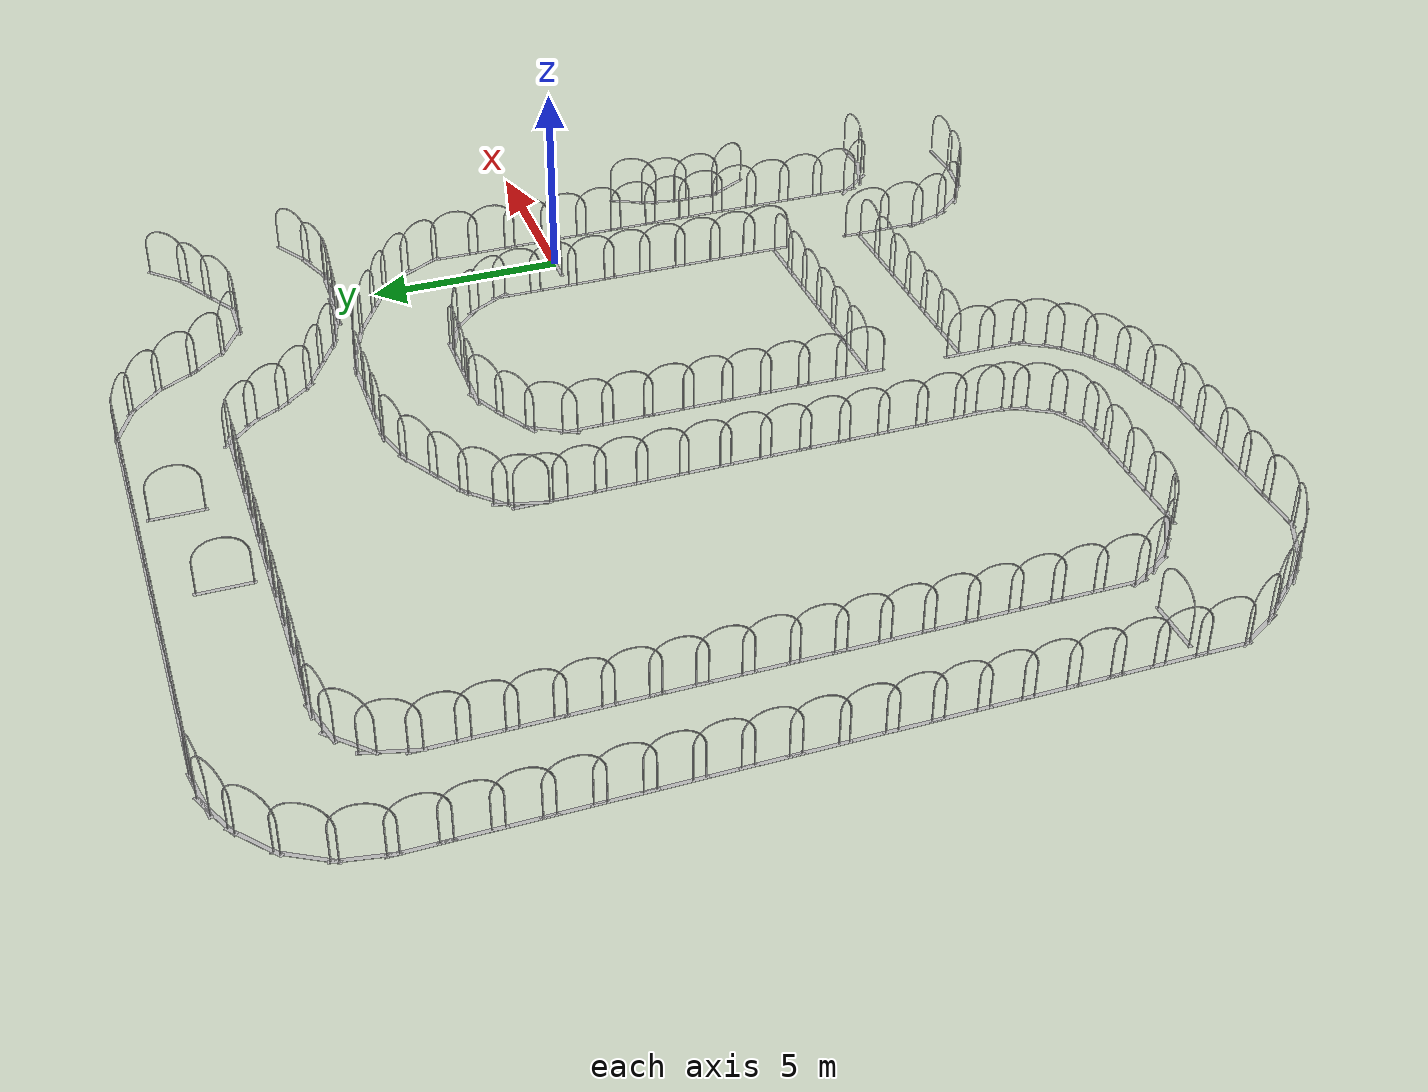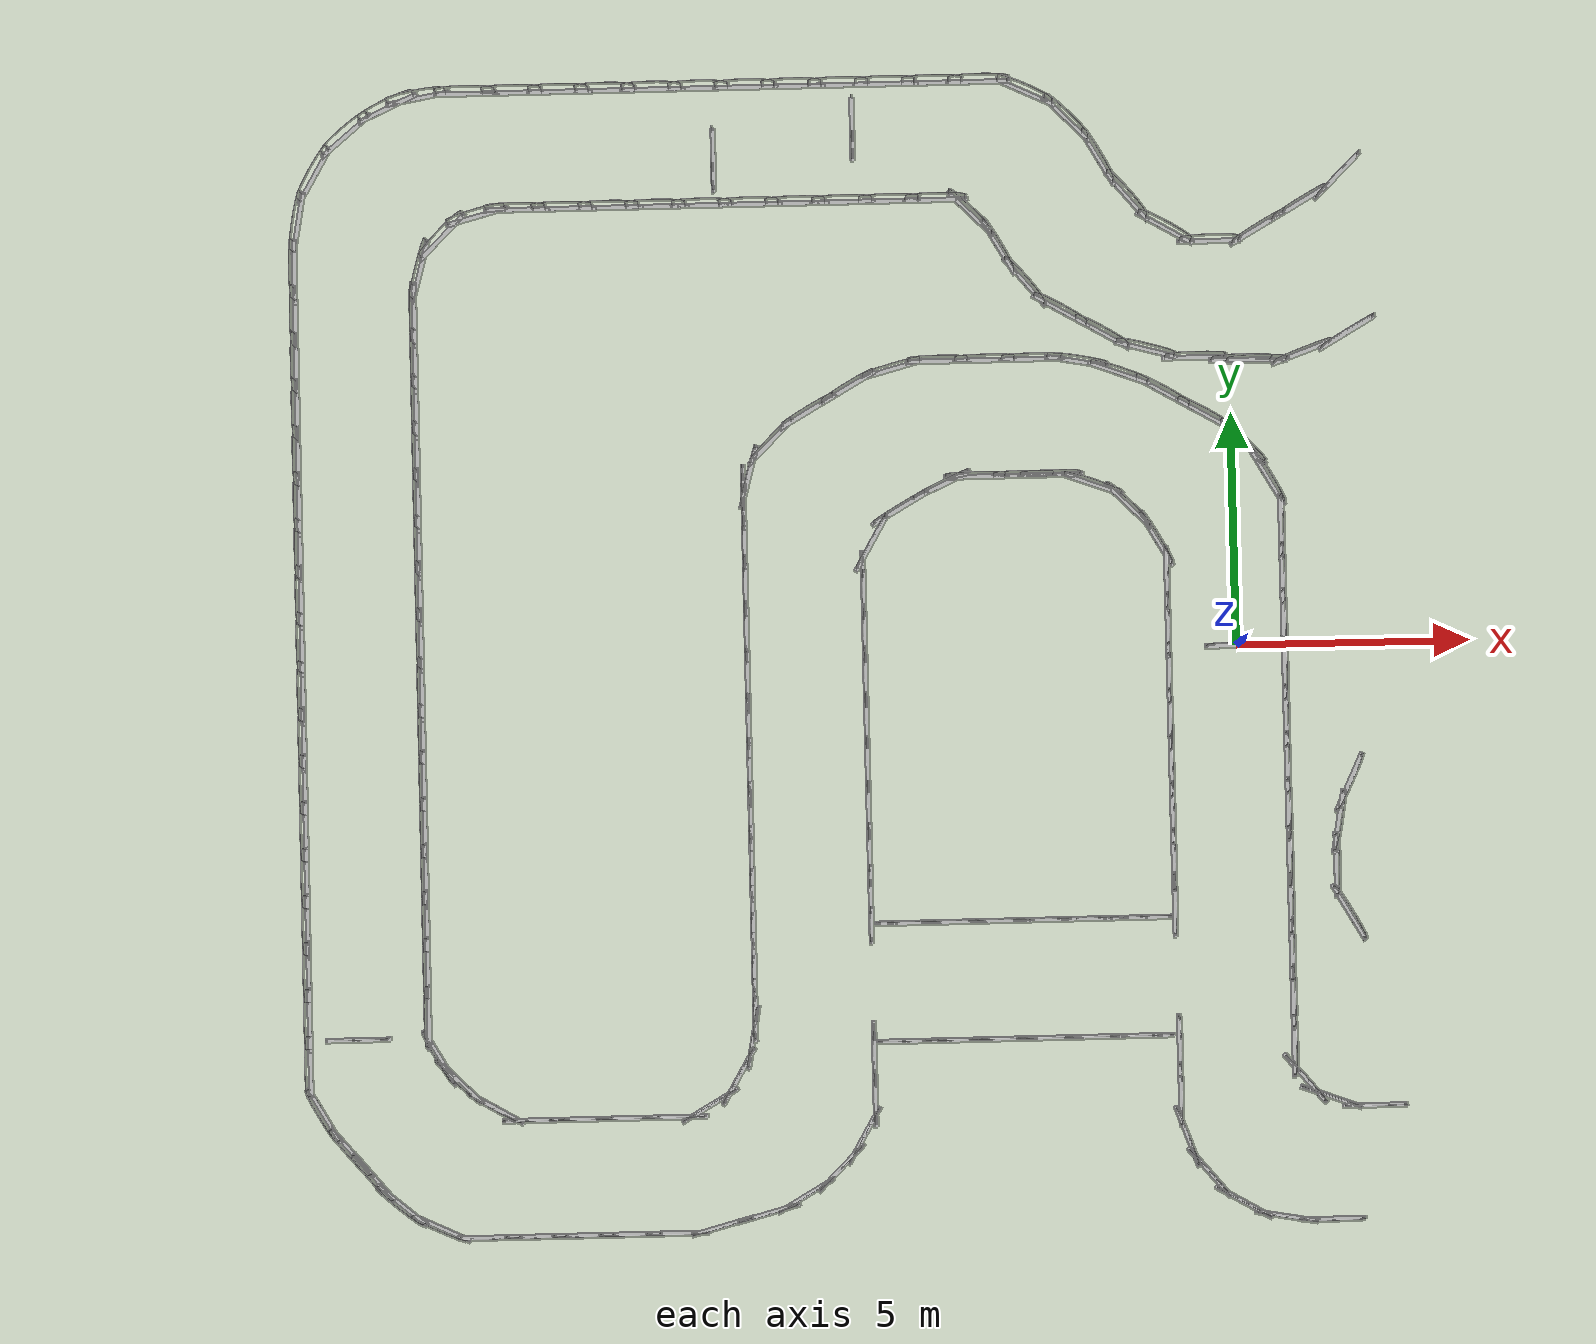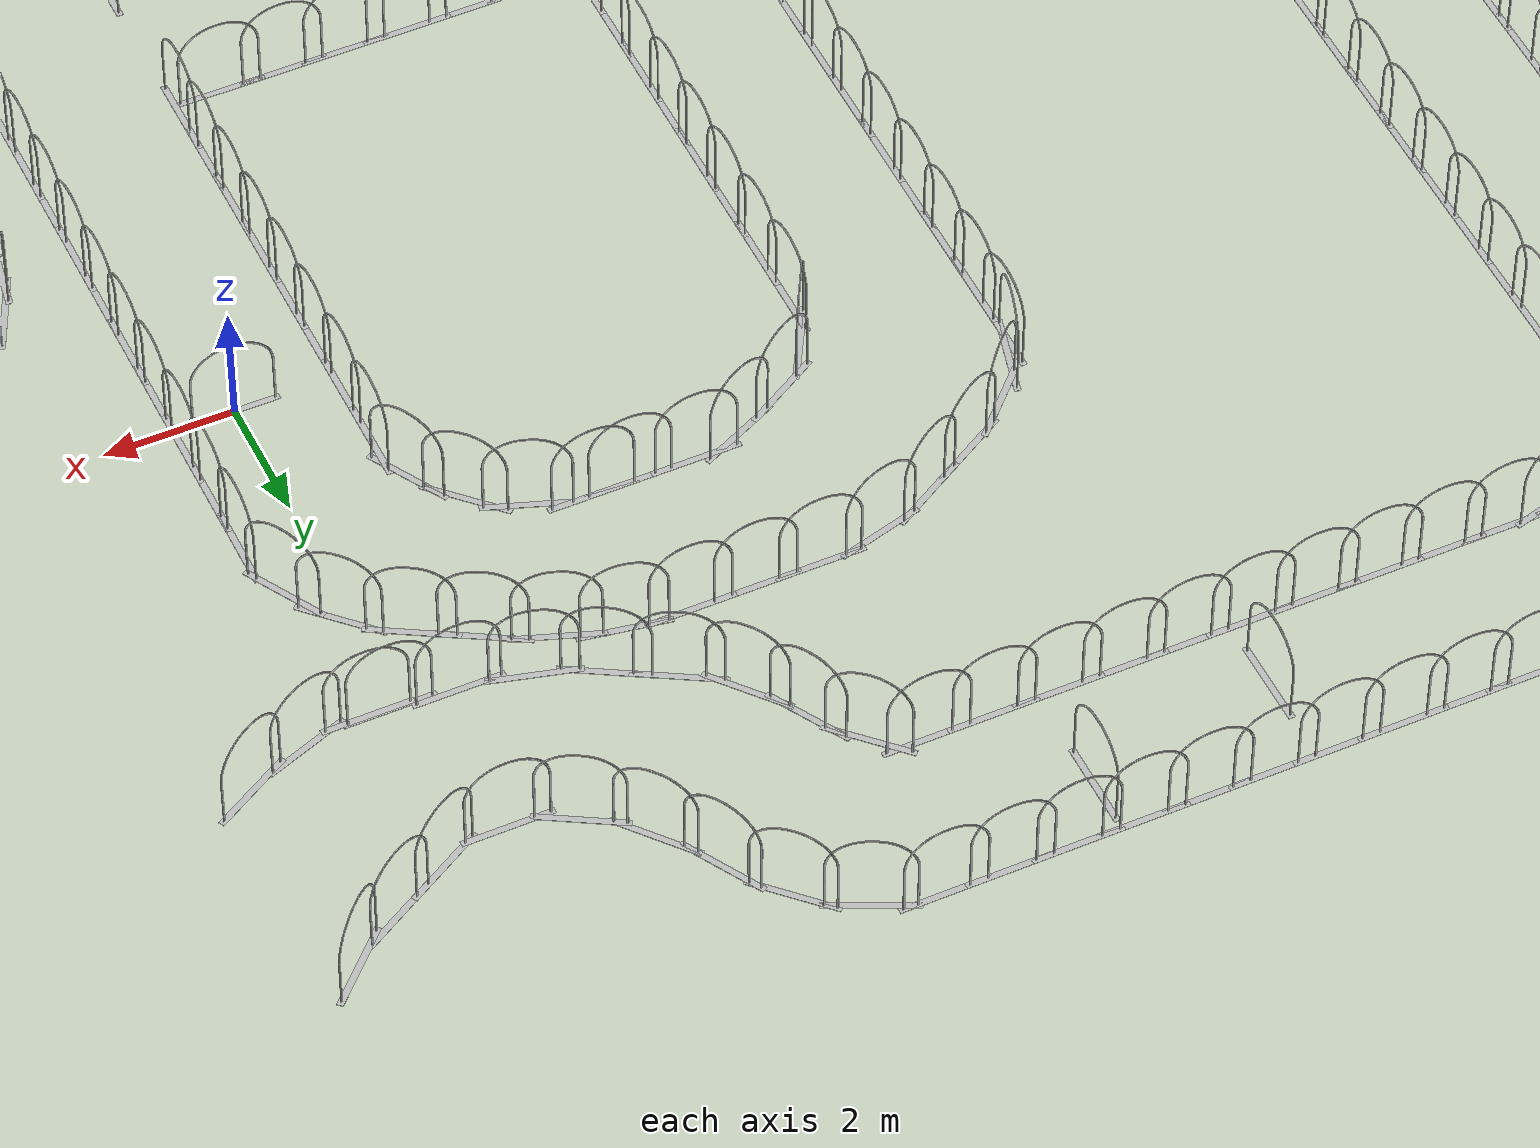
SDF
<sdf version="1.6">
 <world name="racetrack_world">
  <include><name>ground_plane</name><uri>../models/grass_plane/model.sdf</uri></include>
  <include>
   <name>model_0</name>
   <uri>../models/straw_bale/model.sdf</uri>
   <pose>1.5374999999999979 9.45 0.175 0 0 0.5235987755982988</pose>
  </include>
  <include>
   <name>model_1</name>
   <uri>../models/straw_bale/model.sdf</uri>
   <pose>2.3874999999999993 10.025 0.175 0 0 0.7853981633974483</pose>
  </include>
  <include>
   <name>model_20</name>
   <uri>../models/straw_bale/model.sdf</uri>
   <pose>0.6624999999999979 8.95 0.175 0 0 0.5235987755982988</pose>
  </include>
  <include>
   <name>model_103</name>
   <uri>../models/straw_bale/model.sdf</uri>
   <pose>0.5625 6.1 0.175 0 0 -0.0</pose>
  </include>
  <include>
   <name>model_104</name>
   <uri>../models/straw_bale/model.sdf</uri>
   <pose>1.5374999999999979 6.25 0.175 0 0 0.3490658503988659</pose>
  </include>
  <include>
   <name>model_105</name>
   <uri>../models/straw_bale/model.sdf</uri>
   <pose>2.5124999999999993 6.65 0.175 0 0 0.5235987755982988</pose>
  </include>
  <include>
   <name>model_169</name>
   <uri>../models/straw_bale/model.sdf</uri>
   <pose>-14.262500000000003 12.25 0.175 0 0 -0.0</pose>
  </include>
  <include>
   <name>model_170</name>
   <uri>../models/straw_bale/model.sdf</uri>
   <pose>-13.262500000000003 12.25 0.175 0 0 -0.0</pose>
  </include>
  <include>
   <name>model_171</name>
   <uri>../models/straw_bale/model.sdf</uri>
   <pose>-12.262500000000003 12.25 0.175 0 0 -0.0</pose>
  </include>
  <include>
   <name>model_172</name>
   <uri>../models/straw_bale/model.sdf</uri>
   <pose>-11.262500000000003 12.25 0.175 0 0 -0.0</pose>
  </include>
  <include>
   <name>model_173</name>
   <uri>../models/straw_bale/model.sdf</uri>
   <pose>-10.262500000000003 12.25 0.175 0 0 -0.0</pose>
  </include>
  <include>
   <name>model_174</name>
   <uri>../models/straw_bale/model.sdf</uri>
   <pose>-9.262500000000003 12.25 0.175 0 0 -0.0</pose>
  </include>
  <include>
   <name>model_175</name>
   <uri>../models/straw_bale/model.sdf</uri>
   <pose>-8.262500000000003 12.25 0.175 0 0 -0.0</pose>
  </include>
  <include>
   <name>model_176</name>
   <uri>../models/straw_bale/model.sdf</uri>
   <pose>-7.262500000000003 12.25 0.175 0 0 -0.0</pose>
  </include>
  <include>
   <name>model_177</name>
   <uri>../models/straw_bale/model.sdf</uri>
   <pose>-6.262500000000003 12.25 0.175 0 0 -0.0</pose>
  </include>
  <include>
   <name>model_178</name>
   <uri>../models/straw_bale/model.sdf</uri>
   <pose>-5.262500000000003 12.25 0.175 0 0 -0.0</pose>
  </include>
  <include>
   <name>model_179</name>
   <uri>../models/straw_bale/model.sdf</uri>
   <pose>-15.262500000000003 12.25 0.175 0 0 -0.0</pose>
  </include>
  <include>
   <name>model_180</name>
   <uri>../models/straw_bale/model.sdf</uri>
   <pose>-16.262500000000003 12.25 0.175 0 0 -0.0</pose>
  </include>
  <include>
   <name>model_181</name>
   <uri>../models/straw_bale/model.sdf</uri>
   <pose>-4.262500000000003 12.0 0.175 0 0 -0.4363323129985824</pose>
  </include>
  <include>
   <name>model_182</name>
   <uri>../models/straw_bale/model.sdf</uri>
   <pose>-3.387500000000003 11.4 0.175 0 0 -0.7853981633974483</pose>
  </include>
  <include>
   <name>model_183</name>
   <uri>../models/straw_bale/model.sdf</uri>
   <pose>-2.7375000000000007 10.55 0.175 0 0 -1.0471975511965976</pose>
  </include>
  <include>
   <name>model_184</name>
   <uri>../models/straw_bale/model.sdf</uri>
   <pose>-2.137500000000003 9.7 0.175 0 0 -0.8726646259971648</pose>
  </include>
  <include>
   <name>model_185</name>
   <uri>../models/straw_bale/model.sdf</uri>
   <pose>-1.3375000000000021 9.0 0.175 0 0 -0.5235987755982988</pose>
  </include>
  <include>
   <name>model_186</name>
   <uri>../models/straw_bale/model.sdf</uri>
   <pose>-0.38750000000000284 8.7 0.175 0 0 -0.0</pose>
  </include>
  <include>
   <name>model_187</name>
   <uri>../models/straw_bale/model.sdf</uri>
   <pose>-17.312500000000004 12.175 0.175 0 0 0.17453292519943295</pose>
  </include>
  <include>
   <name>model_188</name>
   <uri>../models/straw_bale/model.sdf</uri>
   <pose>-17.962500000000002 11.975000000000001 0.175 0 0 0.4363323129985824</pose>
  </include>
  <include>
   <name>model_189</name>
   <uri>../models/straw_bale/model.sdf</uri>
   <pose>-19.562500000000004 10.55 0.175 0 0 1.0471975511965976</pose>
  </include>
  <include>
   <name>model_190</name>
   <uri>../models/straw_bale/model.sdf</uri>
   <pose>-19.937500000000004 9.525 0.175 0 0 1.3962634015954636</pose>
  </include>
  <include>
   <name>model_191</name>
   <uri>../models/straw_bale/model.sdf</uri>
   <pose>-20.0375 8.5 0.175 0 0 1.5707963267948966</pose>
  </include>
  <include>
   <name>model_192</name>
   <uri>../models/straw_bale/model.sdf</uri>
   <pose>-18.862500000000004 11.4 0.175 0 0 0.6981317007977318</pose>
  </include>
  <include>
   <name>model_193</name>
   <uri>../models/straw_bale/model.sdf</uri>
   <pose>-20.0375 7.5 0.175 0 0 1.5707963267948966</pose>
  </include>
  <include>
   <name>model_194</name>
   <uri>../models/straw_bale/model.sdf</uri>
   <pose>-20.0375 6.5 0.175 0 0 1.5707963267948966</pose>
  </include>
  <include>
   <name>model_195</name>
   <uri>../models/straw_bale/model.sdf</uri>
   <pose>-20.0375 5.5 0.175 0 0 1.5707963267948966</pose>
  </include>
  <include>
   <name>model_196</name>
   <uri>../models/straw_bale/model.sdf</uri>
   <pose>-20.0375 4.5 0.175 0 0 1.5707963267948966</pose>
  </include>
  <include>
   <name>model_197</name>
   <uri>../models/straw_bale/model.sdf</uri>
   <pose>-20.0375 3.5 0.175 0 0 1.5707963267948966</pose>
  </include>
  <include>
   <name>model_198</name>
   <uri>../models/straw_bale/model.sdf</uri>
   <pose>-20.0375 2.5 0.175 0 0 1.5707963267948966</pose>
  </include>
  <include>
   <name>model_199</name>
   <uri>../models/straw_bale/model.sdf</uri>
   <pose>-20.0375 1.5 0.175 0 0 1.5707963267948966</pose>
  </include>
  <include>
   <name>model_200</name>
   <uri>../models/straw_bale/model.sdf</uri>
   <pose>-20.0375 0.5 0.175 0 0 1.5707963267948966</pose>
  </include>
  <include>
   <name>model_201</name>
   <uri>../models/straw_bale/model.sdf</uri>
   <pose>-20.0375 -0.5500000000000007 0.175 0 0 1.5707963267948966</pose>
  </include>
  <include>
   <name>model_202</name>
   <uri>../models/straw_bale/model.sdf</uri>
   <pose>-20.0375 -1.5500000000000007 0.175 0 0 1.5707963267948966</pose>
  </include>
  <include>
   <name>model_203</name>
   <uri>../models/straw_bale/model.sdf</uri>
   <pose>-20.0375 -2.5500000000000007 0.175 0 0 1.5707963267948966</pose>
  </include>
  <include>
   <name>model_204</name>
   <uri>../models/straw_bale/model.sdf</uri>
   <pose>-20.0375 -3.5500000000000007 0.175 0 0 1.5707963267948966</pose>
  </include>
  <include>
   <name>model_205</name>
   <uri>../models/straw_bale/model.sdf</uri>
   <pose>-20.0375 -4.550000000000001 0.175 0 0 1.5707963267948966</pose>
  </include>
  <include>
   <name>model_206</name>
   <uri>../models/straw_bale/model.sdf</uri>
   <pose>-20.0375 -5.550000000000001 0.175 0 0 1.5707963267948966</pose>
  </include>
  <include>
   <name>model_207</name>
   <uri>../models/straw_bale/model.sdf</uri>
   <pose>-20.0375 -6.550000000000001 0.175 0 0 1.5707963267948966</pose>
  </include>
  <include>
   <name>model_208</name>
   <uri>../models/straw_bale/model.sdf</uri>
   <pose>-20.0375 -7.550000000000001 0.175 0 0 1.5707963267948966</pose>
  </include>
  <include>
   <name>model_209</name>
   <uri>../models/straw_bale/model.sdf</uri>
   <pose>-20.0375 -8.55 0.175 0 0 1.5707963267948966</pose>
  </include>
  <include>
   <name>model_210</name>
   <uri>../models/straw_bale/model.sdf</uri>
   <pose>-18.137500000000003 -11.55 0.175 0 0 2.443460952792061</pose>
  </include>
  <include>
   <name>model_211</name>
   <uri>../models/straw_bale/model.sdf</uri>
   <pose>-17.312500000000004 -12.05 0.175 0 0 2.705260340591211</pose>
  </include>
  <include>
   <name>model_212</name>
   <uri>../models/straw_bale/model.sdf</uri>
   <pose>-16.262500000000003 -12.275000000000002 0.175 0 0 3.141592653589793</pose>
  </include>
  <include>
   <name>model_213</name>
   <uri>../models/straw_bale/model.sdf</uri>
   <pose>-19.187500000000004 -10.400000000000002 0.175 0 0 2.2689280275926285</pose>
  </include>
  <include>
   <name>model_214</name>
   <uri>../models/straw_bale/model.sdf</uri>
   <pose>-19.762500000000003 -9.600000000000001 0.175 0 0 2.0943951023931953</pose>
  </include>
  <include>
   <name>model_215</name>
   <uri>../models/straw_bale/model.sdf</uri>
   <pose>-18.712500000000002 -10.95 0.175 0 0 2.2689280275926285</pose>
  </include>
  <include>
   <name>model_216</name>
   <uri>../models/straw_bale/model.sdf</uri>
   <pose>-15.262500000000003 -12.275000000000002 0.175 0 0 3.141592653589793</pose>
  </include>
  <include>
   <name>model_217</name>
   <uri>../models/straw_bale/model.sdf</uri>
   <pose>-14.262500000000003 -12.275000000000002 0.175 0 0 3.141592653589793</pose>
  </include>
  <include>
   <name>model_218</name>
   <uri>../models/straw_bale/model.sdf</uri>
   <pose>-13.262500000000003 -12.275000000000002 0.175 0 0 3.141592653589793</pose>
  </include>
  <include>
   <name>model_219</name>
   <uri>../models/straw_bale/model.sdf</uri>
   <pose>-12.262500000000003 -12.275000000000002 0.175 0 0 3.141592653589793</pose>
  </include>
  <include>
   <name>model_220</name>
   <uri>../models/straw_bale/model.sdf</uri>
   <pose>-12.262500000000003 -9.8 0.175 0 0 3.141592653589793</pose>
  </include>
  <include>
   <name>model_221</name>
   <uri>../models/straw_bale/model.sdf</uri>
   <pose>-13.262500000000003 -9.8 0.175 0 0 3.141592653589793</pose>
  </include>
  <include>
   <name>model_222</name>
   <uri>../models/straw_bale/model.sdf</uri>
   <pose>-14.262500000000003 -9.8 0.175 0 0 3.141592653589793</pose>
  </include>
  <include>
   <name>model_223</name>
   <uri>../models/straw_bale/model.sdf</uri>
   <pose>-15.262500000000003 -9.8 0.175 0 0 3.141592653589793</pose>
  </include>
  <include>
   <name>model_224</name>
   <uri>../models/straw_bale/model.sdf</uri>
   <pose>-16.087500000000002 -9.525000000000002 0.175 0 0 2.6179938779914944</pose>
  </include>
  <include>
   <name>model_225</name>
   <uri>../models/straw_bale/model.sdf</uri>
   <pose>-16.862500000000004 -8.925 0.175 0 0 2.356194490192345</pose>
  </include>
  <include>
   <name>model_226</name>
   <uri>../models/straw_bale/model.sdf</uri>
   <pose>-17.262500000000003 -8.425 0.175 0 0 2.0943951023931953</pose>
  </include>
  <include>
   <name>model_227</name>
   <uri>../models/straw_bale/model.sdf</uri>
   <pose>-17.487500000000004 -7.550000000000001 0.175 0 0 1.5707963267948966</pose>
  </include>
  <include>
   <name>model_228</name>
   <uri>../models/straw_bale/model.sdf</uri>
   <pose>-17.487500000000004 6.525 0.175 0 0 1.5707963267948966</pose>
  </include>
  <include>
   <name>model_229</name>
   <uri>../models/straw_bale/model.sdf</uri>
   <pose>-17.487500000000004 5.525 0.175 0 0 1.5707963267948966</pose>
  </include>
  <include>
   <name>model_230</name>
   <uri>../models/straw_bale/model.sdf</uri>
   <pose>-17.487500000000004 4.525 0.175 0 0 1.5707963267948966</pose>
  </include>
  <include>
   <name>model_231</name>
   <uri>../models/straw_bale/model.sdf</uri>
   <pose>-17.487500000000004 3.5249999999999986 0.175 0 0 1.5707963267948966</pose>
  </include>
  <include>
   <name>model_232</name>
   <uri>../models/straw_bale/model.sdf</uri>
   <pose>-17.487500000000004 2.5249999999999986 0.175 0 0 1.5707963267948966</pose>
  </include>
  <include>
   <name>model_233</name>
   <uri>../models/straw_bale/model.sdf</uri>
   <pose>-17.487500000000004 1.5249999999999986 0.175 0 0 1.5707963267948966</pose>
  </include>
  <include>
   <name>model_234</name>
   <uri>../models/straw_bale/model.sdf</uri>
   <pose>-17.487500000000004 0.5249999999999986 0.175 0 0 1.5707963267948966</pose>
  </include>
  <include>
   <name>model_235</name>
   <uri>../models/straw_bale/model.sdf</uri>
   <pose>-17.487500000000004 -0.5250000000000021 0.175 0 0 1.5707963267948966</pose>
  </include>
  <include>
   <name>model_236</name>
   <uri>../models/straw_bale/model.sdf</uri>
   <pose>-17.487500000000004 -1.5250000000000021 0.175 0 0 1.5707963267948966</pose>
  </include>
  <include>
   <name>model_237</name>
   <uri>../models/straw_bale/model.sdf</uri>
   <pose>-17.487500000000004 -2.525000000000002 0.175 0 0 1.5707963267948966</pose>
  </include>
  <include>
   <name>model_238</name>
   <uri>../models/straw_bale/model.sdf</uri>
   <pose>-17.487500000000004 -3.525000000000002 0.175 0 0 1.5707963267948966</pose>
  </include>
  <include>
   <name>model_239</name>
   <uri>../models/straw_bale/model.sdf</uri>
   <pose>-17.487500000000004 -4.525000000000002 0.175 0 0 1.5707963267948966</pose>
  </include>
  <include>
   <name>model_240</name>
   <uri>../models/straw_bale/model.sdf</uri>
   <pose>-17.487500000000004 -5.525000000000002 0.175 0 0 1.5707963267948966</pose>
  </include>
  <include>
   <name>model_241</name>
   <uri>../models/straw_bale/model.sdf</uri>
   <pose>-17.487500000000004 -6.525000000000002 0.175 0 0 1.5707963267948966</pose>
  </include>
  <include>
   <name>model_242</name>
   <uri>../models/straw_bale/model.sdf</uri>
   <pose>-14.237500000000002 9.725 0.175 0 0 -0.0</pose>
  </include>
  <include>
   <name>model_243</name>
   <uri>../models/straw_bale/model.sdf</uri>
   <pose>-13.237500000000002 9.725 0.175 0 0 -0.0</pose>
  </include>
  <include>
   <name>model_244</name>
   <uri>../models/straw_bale/model.sdf</uri>
   <pose>-12.237500000000002 9.725 0.175 0 0 -0.0</pose>
  </include>
  <include>
   <name>model_245</name>
   <uri>../models/straw_bale/model.sdf</uri>
   <pose>-11.237500000000002 9.725 0.175 0 0 -0.0</pose>
  </include>
  <include>
   <name>model_246</name>
   <uri>../models/straw_bale/model.sdf</uri>
   <pose>-10.237500000000002 9.725 0.175 0 0 -0.0</pose>
  </include>
  <include>
   <name>model_247</name>
   <uri>../models/straw_bale/model.sdf</uri>
   <pose>-9.237500000000002 9.725 0.175 0 0 -0.0</pose>
  </include>
  <include>
   <name>model_248</name>
   <uri>../models/straw_bale/model.sdf</uri>
   <pose>-8.237500000000002 9.725 0.175 0 0 -0.0</pose>
  </include>
  <include>
   <name>model_249</name>
   <uri>../models/straw_bale/model.sdf</uri>
   <pose>-7.2375000000000025 9.725 0.175 0 0 -0.0</pose>
  </include>
  <include>
   <name>model_250</name>
   <uri>../models/straw_bale/model.sdf</uri>
   <pose>-6.2375000000000025 9.725 0.175 0 0 -0.0</pose>
  </include>
  <include>
   <name>model_251</name>
   <uri>../models/straw_bale/model.sdf</uri>
   <pose>-15.237500000000002 9.725 0.175 0 0 -0.0</pose>
  </include>
  <include>
   <name>model_252</name>
   <uri>../models/straw_bale/model.sdf</uri>
   <pose>-16.087500000000002 9.6 0.175 0 0 0.2617993877991494</pose>
  </include>
  <include>
   <name>model_253</name>
   <uri>../models/straw_bale/model.sdf</uri>
   <pose>-16.837500000000002 9.175 0.175 0 0 0.7853981633974483</pose>
  </include>
  <include>
   <name>model_254</name>
   <uri>../models/straw_bale/model.sdf</uri>
   <pose>-17.337500000000002 8.45 0.175 0 0 1.3089969389957472</pose>
  </include>
  <include>
   <name>model_255</name>
   <uri>../models/straw_bale/model.sdf</uri>
   <pose>-17.487500000000004 7.5 0.175 0 0 1.5707963267948966</pose>
  </include>
  <include>
   <name>model_256</name>
   <uri>../models/straw_bale/model.sdf</uri>
   <pose>-10.387500000000003 3.849999999999998 0.175 0 0 1.3089969389957472</pose>
  </include>
  <include>
   <name>model_257</name>
   <uri>../models/straw_bale/model.sdf</uri>
   <pose>-10.512500000000003 2.5 0.175 0 0 1.5707963267948966</pose>
  </include>
  <include>
   <name>model_258</name>
   <uri>../models/straw_bale/model.sdf</uri>
   <pose>-10.512500000000003 1.5 0.175 0 0 1.5707963267948966</pose>
  </include>
  <include>
   <name>model_259</name>
   <uri>../models/straw_bale/model.sdf</uri>
   <pose>-10.512500000000003 0.5 0.175 0 0 1.5707963267948966</pose>
  </include>
  <include>
   <name>model_260</name>
   <uri>../models/straw_bale/model.sdf</uri>
   <pose>-10.512500000000003 -0.5500000000000007 0.175 0 0 1.5707963267948966</pose>
  </include>
  <include>
   <name>model_261</name>
   <uri>../models/straw_bale/model.sdf</uri>
   <pose>-10.512500000000003 -1.5500000000000007 0.175 0 0 1.5707963267948966</pose>
  </include>
  <include>
   <name>model_262</name>
   <uri>../models/straw_bale/model.sdf</uri>
   <pose>-10.512500000000003 -2.5500000000000007 0.175 0 0 1.5707963267948966</pose>
  </include>
  <include>
   <name>model_263</name>
   <uri>../models/straw_bale/model.sdf</uri>
   <pose>-10.512500000000003 -3.5500000000000007 0.175 0 0 1.5707963267948966</pose>
  </include>
  <include>
   <name>model_264</name>
   <uri>../models/straw_bale/model.sdf</uri>
   <pose>-10.512500000000003 -4.550000000000001 0.175 0 0 1.5707963267948966</pose>
  </include>
  <include>
   <name>model_265</name>
   <uri>../models/straw_bale/model.sdf</uri>
   <pose>-10.512500000000003 -5.550000000000001 0.175 0 0 1.5707963267948966</pose>
  </include>
  <include>
   <name>model_266</name>
   <uri>../models/straw_bale/model.sdf</uri>
   <pose>-10.512500000000003 -6.550000000000001 0.175 0 0 1.5707963267948966</pose>
  </include>
  <include>
   <name>model_267</name>
   <uri>../models/straw_bale/model.sdf</uri>
   <pose>-10.512500000000003 -7.550000000000001 0.175 0 0 1.5707963267948966</pose>
  </include>
  <include>
   <name>model_268</name>
   <uri>../models/straw_bale/model.sdf</uri>
   <pose>-5.4875000000000025 9.4 0.175 0 0 -0.7853981633974483</pose>
  </include>
  <include>
   <name>model_269</name>
   <uri>../models/straw_bale/model.sdf</uri>
   <pose>-4.912500000000001 8.675 0.175 0 0 -1.0471975511965976</pose>
  </include>
  <include>
   <name>model_270</name>
   <uri>../models/straw_bale/model.sdf</uri>
   <pose>-4.3625000000000025 7.9 0.175 0 0 -0.8726646259971648</pose>
  </include>
  <include>
   <name>model_271</name>
   <uri>../models/straw_bale/model.sdf</uri>
   <pose>-3.6125000000000007 7.275 0.175 0 0 -0.5235987755982988</pose>
  </include>
  <include>
   <name>model_272</name>
   <uri>../models/straw_bale/model.sdf</uri>
   <pose>-2.7375000000000007 6.775 0.175 0 0 -0.5235987755982988</pose>
  </include>
  <include>
   <name>model_273</name>
   <uri>../models/straw_bale/model.sdf</uri>
   <pose>-0.7625000000000028 6.199999999999999 0.175 0 0 -0.0</pose>
  </include>
  <include>
   <name>model_274</name>
   <uri>../models/straw_bale/model.sdf</uri>
   <pose>-1.8125000000000036 6.4 0.175 0 0 -0.2617993877991494</pose>
  </include>
  <include>
   <name>model_275</name>
   <uri>../models/straw_bale/model.sdf</uri>
   <pose>0.23749999999999716 6.125 0.175 0 0 -0.0</pose>
  </include>
  <include>
   <name>model_276</name>
   <uri>../models/straw_bale/model.sdf</uri>
   <pose>-11.512500000000003 -9.575 0.175 0 0 3.6651914291880923</pose>
  </include>
  <include>
   <name>model_277</name>
   <uri>../models/straw_bale/model.sdf</uri>
   <pose>-10.887500000000003 -8.975000000000001 0.175 0 0 4.1887902047863905</pose>
  </include>
  <include>
   <name>model_278</name>
   <uri>../models/straw_bale/model.sdf</uri>
   <pose>-10.562500000000002 -8.150000000000002 0.175 0 0 -1.7453292519943295</pose>
  </include>
  <include>
   <name>model_279</name>
   <uri>../models/straw_bale/model.sdf</uri>
   <pose>-7.787500000000001 2.375 0.175 0 0 1.0471975511965976</pose>
  </include>
  <include>
   <name>model_280</name>
   <uri>../models/straw_bale/model.sdf</uri>
   <pose>-7.9875000000000025 1.5249999999999986 0.175 0 0 1.5707963267948966</pose>
  </include>
  <include>
   <name>model_281</name>
   <uri>../models/straw_bale/model.sdf</uri>
   <pose>-7.9875000000000025 0.5249999999999986 0.175 0 0 1.5707963267948966</pose>
  </include>
  <include>
   <name>model_282</name>
   <uri>../models/straw_bale/model.sdf</uri>
   <pose>-7.9875000000000025 -0.5250000000000021 0.175 0 0 1.5707963267948966</pose>
  </include>
  <include>
   <name>model_283</name>
   <uri>../models/straw_bale/model.sdf</uri>
   <pose>-7.9875000000000025 -1.5250000000000021 0.175 0 0 1.5707963267948966</pose>
  </include>
  <include>
   <name>model_284</name>
   <uri>../models/straw_bale/model.sdf</uri>
   <pose>-7.9875000000000025 -2.525000000000002 0.175 0 0 1.5707963267948966</pose>
  </include>
  <include>
   <name>model_285</name>
   <uri>../models/straw_bale/model.sdf</uri>
   <pose>-7.9875000000000025 -3.525000000000002 0.175 0 0 1.5707963267948966</pose>
  </include>
  <include>
   <name>model_286</name>
   <uri>../models/straw_bale/model.sdf</uri>
   <pose>-7.9875000000000025 -4.525000000000002 0.175 0 0 1.5707963267948966</pose>
  </include>
  <include>
   <name>model_287</name>
   <uri>../models/straw_bale/model.sdf</uri>
   <pose>-7.9875000000000025 -5.525000000000002 0.175 0 0 1.5707963267948966</pose>
  </include>
  <include>
   <name>model_288</name>
   <uri>../models/straw_bale/model.sdf</uri>
   <pose>-11.287500000000003 -12.150000000000002 0.175 0 0 3.4033920413889427</pose>
  </include>
  <include>
   <name>model_289</name>
   <uri>../models/straw_bale/model.sdf</uri>
   <pose>-10.312500000000002 -11.900000000000002 0.175 0 0 3.4033920413889427</pose>
  </include>
  <include>
   <name>model_290</name>
   <uri>../models/straw_bale/model.sdf</uri>
   <pose>-9.512500000000003 -11.55 0.175 0 0 3.6651914291880923</pose>
  </include>
  <include>
   <name>model_291</name>
   <uri>../models/straw_bale/model.sdf</uri>
   <pose>-8.737500000000002 -10.975000000000001 0.175 0 0 3.9269908169872414</pose>
  </include>
  <include>
   <name>model_292</name>
   <uri>../models/straw_bale/model.sdf</uri>
   <pose>-8.237500000000002 -10.3 0.175 0 0 -2.0943951023931953</pose>
  </include>
  <include>
   <name>model_293</name>
   <uri>../models/straw_bale/model.sdf</uri>
   <pose>-7.9875000000000025 -8.55 0.175 0 0 1.5707963267948966</pose>
  </include>
  <include>
   <name>model_294</name>
   <uri>../models/straw_bale/model.sdf</uri>
   <pose>-7.9875000000000025 -9.425 0.175 0 0 1.5707963267948966</pose>
  </include>
  <include>
   <name>model_295</name>
   <uri>../models/straw_bale/model.sdf</uri>
   <pose>-0.5875000000000021 4.975 0.175 0 0 -0.5235987755982988</pose>
  </include>
  <include>
   <name>model_296</name>
   <uri>../models/straw_bale/model.sdf</uri>
   <pose>0.9874999999999972 1.5 0.175 0 0 1.5707963267948966</pose>
  </include>
  <include>
   <name>model_297</name>
   <uri>../models/straw_bale/model.sdf</uri>
   <pose>0.9874999999999972 0.5 0.175 0 0 1.5707963267948966</pose>
  </include>
  <include>
   <name>model_298</name>
   <uri>../models/straw_bale/model.sdf</uri>
   <pose>0.9874999999999972 -0.5500000000000007 0.175 0 0 1.5707963267948966</pose>
  </include>
  <include>
   <name>model_299</name>
   <uri>../models/straw_bale/model.sdf</uri>
   <pose>0.9874999999999972 -1.5500000000000007 0.175 0 0 1.5707963267948966</pose>
  </include>
  <include>
   <name>model_300</name>
   <uri>../models/straw_bale/model.sdf</uri>
   <pose>0.9874999999999972 -2.5500000000000007 0.175 0 0 1.5707963267948966</pose>
  </include>
  <include>
   <name>model_301</name>
   <uri>../models/straw_bale/model.sdf</uri>
   <pose>0.9874999999999972 -3.5500000000000007 0.175 0 0 1.5707963267948966</pose>
  </include>
  <include>
   <name>model_302</name>
   <uri>../models/straw_bale/model.sdf</uri>
   <pose>0.9874999999999972 -4.550000000000001 0.175 0 0 1.5707963267948966</pose>
  </include>
  <include>
   <name>model_303</name>
   <uri>../models/straw_bale/model.sdf</uri>
   <pose>0.9874999999999972 -5.550000000000001 0.175 0 0 1.5707963267948966</pose>
  </include>
  <include>
   <name>model_304</name>
   <uri>../models/straw_bale/model.sdf</uri>
   <pose>-7.262500000000003 6.1 0.175 0 0 0.2617993877991494</pose>
  </include>
  <include>
   <name>model_305</name>
   <uri>../models/straw_bale/model.sdf</uri>
   <pose>-6.262500000000003 6.25 0.175 0 0 -0.0</pose>
  </include>
  <include>
   <name>model_306</name>
   <uri>../models/straw_bale/model.sdf</uri>
   <pose>-5.262500000000003 6.25 0.175 0 0 -0.0</pose>
  </include>
  <include>
   <name>model_307</name>
   <uri>../models/straw_bale/model.sdf</uri>
   <pose>-4.262500000000003 6.25 0.175 0 0 -0.0</pose>
  </include>
  <include>
   <name>model_308</name>
   <uri>../models/straw_bale/model.sdf</uri>
   <pose>-3.2875000000000014 6.175000000000001 0.175 0 0 -0.17453292519943295</pose>
  </include>
  <include>
   <name>model_309</name>
   <uri>../models/straw_bale/model.sdf</uri>
   <pose>-2.387500000000003 5.9 0.175 0 0 -0.3490658503988659</pose>
  </include>
  <include>
   <name>model_310</name>
   <uri>../models/straw_bale/model.sdf</uri>
   <pose>-1.4625000000000021 5.475 0.175 0 0 -0.5235987755982988</pose>
  </include>
  <include>
   <name>model_311</name>
   <uri>../models/straw_bale/model.sdf</uri>
   <pose>0.21249999999999858 4.35 0.175 0 0 -0.7853981633974483</pose>
  </include>
  <include>
   <name>model_312</name>
   <uri>../models/straw_bale/model.sdf</uri>
   <pose>0.7374999999999972 3.5749999999999993 0.175 0 0 -1.0471975511965976</pose>
  </include>
  <include>
   <name>model_313</name>
   <uri>../models/straw_bale/model.sdf</uri>
   <pose>0.9874999999999972 2.5249999999999986 0.175 0 0 1.5707963267948966</pose>
  </include>
  <include>
   <name>model_314</name>
   <uri>../models/straw_bale/model.sdf</uri>
   <pose>-8.212500000000002 5.725 0.175 0 0 0.5235987755982988</pose>
  </include>
  <include>
   <name>model_315</name>
   <uri>../models/straw_bale/model.sdf</uri>
   <pose>-9.087500000000002 5.225 0.175 0 0 0.5235987755982988</pose>
  </include>
  <include>
   <name>model_316</name>
   <uri>../models/straw_bale/model.sdf</uri>
   <pose>-9.887500000000003 4.6 0.175 0 0 0.7853981633974483</pose>
  </include>
  <include>
   <name>model_317</name>
   <uri>../models/straw_bale/model.sdf</uri>
   <pose>-10.512500000000003 3.4250000000000007 0.175 0 0 1.5707963267948966</pose>
  </include>
  <include>
   <name>model_318</name>
   <uri>../models/straw_bale/model.sdf</uri>
   <pose>-7.2375000000000025 -8.3 0.175 0 0 -0.0</pose>
  </include>
  <include>
   <name>model_319</name>
   <uri>../models/straw_bale/model.sdf</uri>
   <pose>-1.4875000000000007 1.4750000000000014 0.175 0 0 1.5707963267948966</pose>
  </include>
  <include>
   <name>model_320</name>
   <uri>../models/straw_bale/model.sdf</uri>
   <pose>-1.4875000000000007 0.47499999999999787 0.175 0 0 1.5707963267948966</pose>
  </include>
  <include>
   <name>model_321</name>
   <uri>../models/straw_bale/model.sdf</uri>
   <pose>-1.4875000000000007 -0.5749999999999993 0.175 0 0 1.5707963267948966</pose>
  </include>
  <include>
   <name>model_322</name>
   <uri>../models/straw_bale/model.sdf</uri>
   <pose>-1.4875000000000007 -1.5749999999999993 0.175 0 0 1.5707963267948966</pose>
  </include>
  <include>
   <name>model_323</name>
   <uri>../models/straw_bale/model.sdf</uri>
   <pose>-1.4875000000000007 -2.5749999999999993 0.175 0 0 1.5707963267948966</pose>
  </include>
  <include>
   <name>model_324</name>
   <uri>../models/straw_bale/model.sdf</uri>
   <pose>-1.4875000000000007 -3.5749999999999993 0.175 0 0 1.5707963267948966</pose>
  </include>
  <include>
   <name>model_325</name>
   <uri>../models/straw_bale/model.sdf</uri>
   <pose>-1.4875000000000007 -4.574999999999999 0.175 0 0 1.5707963267948966</pose>
  </include>
  <include>
   <name>model_326</name>
   <uri>../models/straw_bale/model.sdf</uri>
   <pose>-1.4875000000000007 -5.525000000000002 0.175 0 0 1.5707963267948966</pose>
  </include>
  <include>
   <name>model_327</name>
   <uri>../models/straw_bale/model.sdf</uri>
   <pose>-1.6875000000000036 2.3249999999999993 0.175 0 0 2.0943951023931953</pose>
  </include>
  <include>
   <name>model_328</name>
   <uri>../models/straw_bale/model.sdf</uri>
   <pose>-6.2375000000000025 -8.3 0.175 0 0 3.141592653589793</pose>
  </include>
  <include>
   <name>model_329</name>
   <uri>../models/straw_bale/model.sdf</uri>
   <pose>-5.2375000000000025 -8.3 0.175 0 0 3.141592653589793</pose>
  </include>
  <include>
   <name>model_330</name>
   <uri>../models/straw_bale/model.sdf</uri>
   <pose>-4.2375000000000025 -8.3 0.175 0 0 3.141592653589793</pose>
  </include>
  <include>
   <name>model_331</name>
   <uri>../models/straw_bale/model.sdf</uri>
   <pose>-7.212500000000002 -5.775000000000002 0.175 0 0 3.141592653589793</pose>
  </include>
  <include>
   <name>model_332</name>
   <uri>../models/straw_bale/model.sdf</uri>
   <pose>-6.212500000000002 -5.775000000000002 0.175 0 0 3.141592653589793</pose>
  </include>
  <include>
   <name>model_333</name>
   <uri>../models/straw_bale/model.sdf</uri>
   <pose>-5.212500000000002 -5.775000000000002 0.175 0 0 3.141592653589793</pose>
  </include>
  <include>
   <name>model_334</name>
   <uri>../models/straw_bale/model.sdf</uri>
   <pose>-4.212500000000002 -5.775000000000002 0.175 0 0 3.141592653589793</pose>
  </include>
  <include>
   <name>model_335</name>
   <uri>../models/straw_bale/model.sdf</uri>
   <pose>-3.212500000000002 -5.775000000000002 0.175 0 0 3.141592653589793</pose>
  </include>
  <include>
   <name>model_336</name>
   <uri>../models/straw_bale/model.sdf</uri>
   <pose>-2.212500000000002 -5.775000000000002 0.175 0 0 3.141592653589793</pose>
  </include>
  <include>
   <name>model_337</name>
   <uri>../models/straw_bale/model.sdf</uri>
   <pose>-3.2375000000000007 -8.3 0.175 0 0 3.141592653589793</pose>
  </include>
  <include>
   <name>model_338</name>
   <uri>../models/straw_bale/model.sdf</uri>
   <pose>-2.2375000000000007 -8.3 0.175 0 0 3.141592653589793</pose>
  </include>
  <include>
   <name>model_339</name>
   <uri>../models/straw_bale/model.sdf</uri>
   <pose>1.7374999999999972 -12.3 0.175 0 0 3.141592653589793</pose>
  </include>
  <include>
   <name>model_340</name>
   <uri>../models/straw_bale/model.sdf</uri>
   <pose>-1.4625000000000021 -8.55 0.175 0 0 1.5707963267948966</pose>
  </include>
  <include>
   <name>model_341</name>
   <uri>../models/straw_bale/model.sdf</uri>
   <pose>-7.162500000000001 3.1000000000000014 0.175 0 0 0.5235987755982988</pose>
  </include>
  <include>
   <name>model_342</name>
   <uri>../models/straw_bale/model.sdf</uri>
   <pose>-6.262500000000003 3.5749999999999993 0.175 0 0 0.4363323129985824</pose>
  </include>
  <include>
   <name>model_343</name>
   <uri>../models/straw_bale/model.sdf</uri>
   <pose>-5.512500000000003 3.75 0.175 0 0 -0.0</pose>
  </include>
  <include>
   <name>model_344</name>
   <uri>../models/straw_bale/model.sdf</uri>
   <pose>-4.4875000000000025 3.75 0.175 0 0 -0.0</pose>
  </include>
  <include>
   <name>model_345</name>
   <uri>../models/straw_bale/model.sdf</uri>
   <pose>-2.262500000000003 3.0500000000000007 0.175 0 0 2.356194490192345</pose>
  </include>
  <include>
   <name>model_346</name>
   <uri>../models/straw_bale/model.sdf</uri>
   <pose>-3.012500000000003 3.5249999999999986 0.175 0 0 2.792526803190927</pose>
  </include>
  <include>
   <name>model_347</name>
   <uri>../models/straw_bale/model.sdf</uri>
   <pose>-3.9125000000000014 3.75 0.175 0 0 -0.0</pose>
  </include>
  <include>
   <name>model_348</name>
   <uri>../models/straw_bale/model.sdf</uri>
   <pose>-1.4625000000000021 -9.575 0.175 0 0 1.5707963267948966</pose>
  </include>
  <include>
   <name>model_349</name>
   <uri>../models/straw_bale/model.sdf</uri>
   <pose>-1.3375000000000021 -10.475000000000001 0.175 0 0 1.9198621771937625</pose>
  </include>
  <include>
   <name>model_350</name>
   <uri>../models/straw_bale/model.sdf</uri>
   <pose>-0.8875000000000028 -11.25 0.175 0 0 2.2689280275926285</pose>
  </include>
  <include>
   <name>model_351</name>
   <uri>../models/straw_bale/model.sdf</uri>
   <pose>0.7374999999999972 -12.224999999999998 0.175 0 0 2.9670597283903604</pose>
  </include>
  <include>
   <name>model_352</name>
   <uri>../models/straw_bale/model.sdf</uri>
   <pose>-0.16250000000000142 -11.900000000000002 0.175 0 0 2.6179938779914944</pose>
  </include>
  <include>
   <name>model_353</name>
   <uri>../models/straw_bale/model.sdf</uri>
   <pose>0.9874999999999972 -6.550000000000001 0.175 0 0 1.5707963267948966</pose>
  </include>
  <include>
   <name>model_354</name>
   <uri>../models/straw_bale/model.sdf</uri>
   <pose>0.9874999999999972 -7.550000000000001 0.175 0 0 1.5707963267948966</pose>
  </include>
  <include>
   <name>model_355</name>
   <uri>../models/straw_bale/model.sdf</uri>
   <pose>0.9874999999999972 -8.575 0.175 0 0 1.5707963267948966</pose>
  </include>
  <include>
   <name>model_356</name>
   <uri>../models/straw_bale/model.sdf</uri>
   <pose>1.2124999999999986 -9.3 0.175 0 0 2.2689280275926285</pose>
  </include>
  <include>
   <name>model_357</name>
   <uri>../models/straw_bale/model.sdf</uri>
   <pose>1.7624999999999993 -9.7 0.175 0 0 2.792526803190927</pose>
  </include>
  <include>
   <name>model_358</name>
   <uri>../models/straw_bale/model.sdf</uri>
   <pose>2.6875 -9.900000000000002 0.175 0 0 3.141592653589793</pose>
  </include>
  <include>
   <name>model_371</name>
   <uri>../models/straw_bale/model.sdf</uri>
   <pose>1.9874999999999972 -4.75 0.175 0 0 -1.5707963267948966</pose>
  </include>
  <include>
   <name>model_375</name>
   <uri>../models/straw_bale/model.sdf</uri>
   <pose>2.3125 -3.0 0.175 0 0 -2.007128639793479</pose>
  </include>
  <include>
   <name>model_376</name>
   <uri>../models/straw_bale/model.sdf</uri>
   <pose>2.0625 -3.8249999999999993 0.175 0 0 -1.7453292519943295</pose>
  </include>
  <include>
   <name>model_377</name>
   <uri>../models/straw_bale/model.sdf</uri>
   <pose>2.237499999999997 -5.775000000000002 0.175 0 0 -1.0471975511965976</pose>
  </include>
  <include><name>hoop_1</name><uri>../models/hoop/model.sdf</uri><pose>-8.0 11.3 0.0 0 0 1.57</pose></include>
  <include><name>hoop_2</name><uri>../models/hoop/model.sdf</uri><pose>-11.0 10.7 0.0 0 0 1.57</pose></include>
  <include>
   <name>crazy_ball</name>
   <uri>../models/crazy_ball/model.sdf</uri>
   <pose>-19 -8 0.11 0 0 0</pose>
  </include>
 </world>
</sdf>
